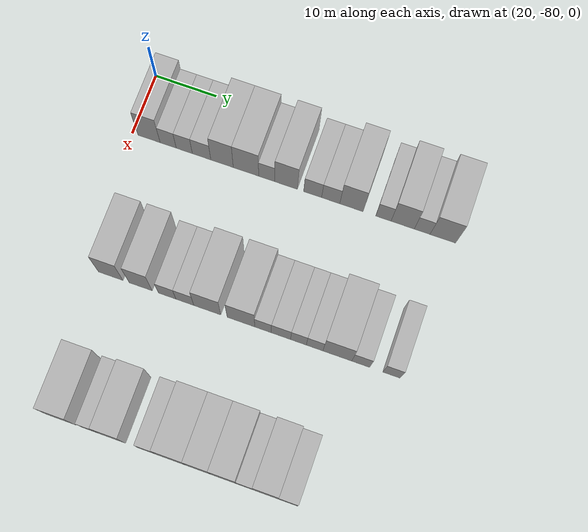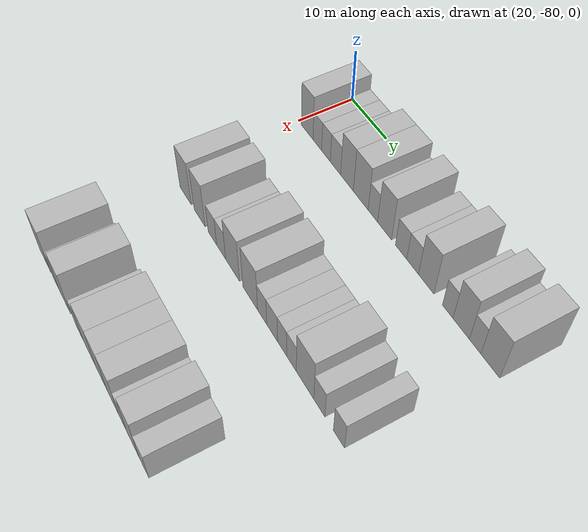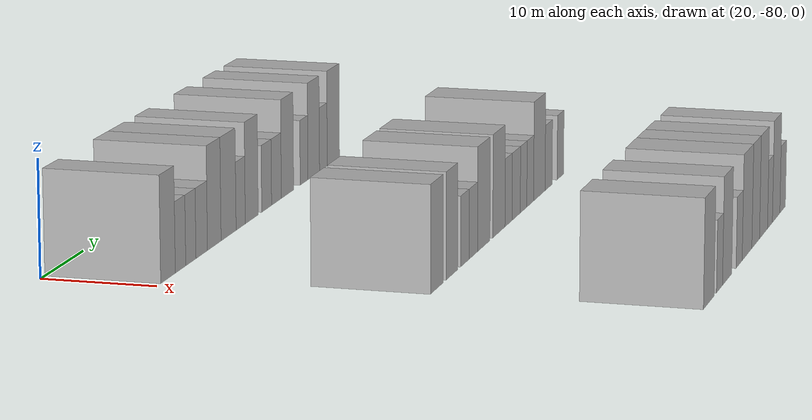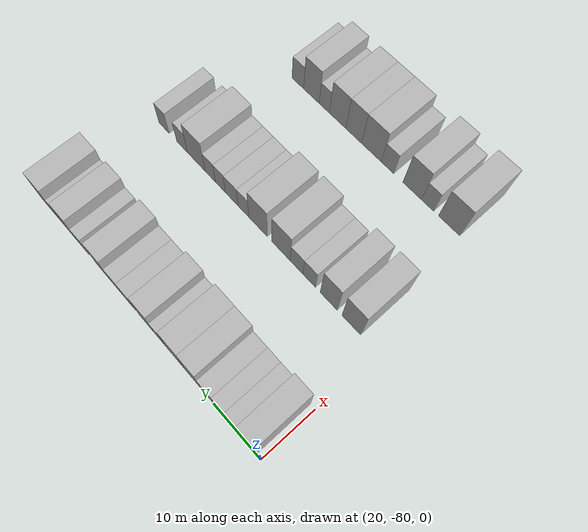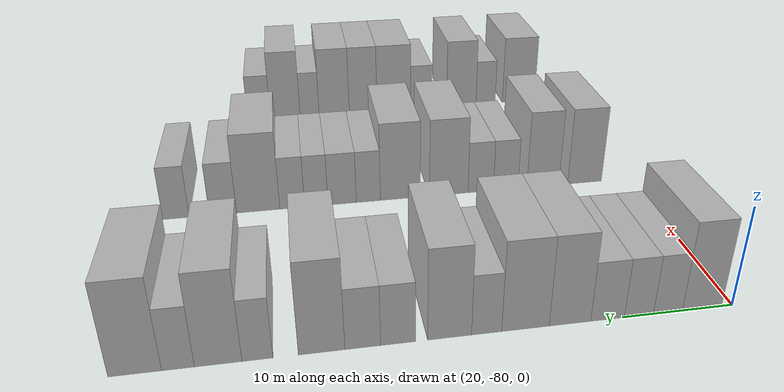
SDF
<sdf version="1.6">
 <world name="default">
  <model name="building_71">
   <static>1</static>
   <pose>25.0000 -77.2271 0 0.000000 0.000000 0.000000</pose>
   <link name="link">
    <pose>0 0 4.50 0 0 0</pose>
    <collision name="collision"><geometry><box><size>10.0000 3.6264 9.0000</size></box></geometry></collision>
    <visual name="visual">
     <cast_shadows>0</cast_shadows>
     <geometry><box><size>10.0000 3.6264 9.0000</size></box></geometry>
     <material>
      <script>
       <uri>model://HANNAS_wall/materials/scripts</uri>
       <uri>model://HANNAS_wall/materials/textures</uri>
       <name>vrc/HANNAS_wall</name>
      </script>
     </material>
    </visual>
   </link>
  </model>
  <model name="building_72">
   <static>1</static>
   <pose>25.0000 -74.0999 0 0.000000 0.000000 0.000000</pose>
   <link name="link">
    <pose>0 0 3.00 0 0 0</pose>
    <collision name="collision"><geometry><box><size>10.0000 2.6280 6.0000</size></box></geometry></collision>
    <visual name="visual">
     <cast_shadows>0</cast_shadows>
     <geometry><box><size>10.0000 2.6280 6.0000</size></box></geometry>
     <material>
      <script>
       <uri>model://HANNAS_wall/materials/scripts</uri>
       <uri>model://HANNAS_wall/materials/textures</uri>
       <name>vrc/HANNAS_wall</name>
      </script>
     </material>
    </visual>
   </link>
  </model>
  <model name="building_73">
   <static>1</static>
   <pose>25.0000 -71.4764 0 0.000000 0.000000 0.000000</pose>
   <link name="link">
    <pose>0 0 3.00 0 0 0</pose>
    <collision name="collision"><geometry><box><size>10.0000 2.6190 6.0000</size></box></geometry></collision>
    <visual name="visual">
     <cast_shadows>0</cast_shadows>
     <geometry><box><size>10.0000 2.6190 6.0000</size></box></geometry>
     <material>
      <script>
       <uri>model://HANNAS_wall/materials/scripts</uri>
       <uri>model://HANNAS_wall/materials/textures</uri>
       <name>vrc/HANNAS_wall</name>
      </script>
     </material>
    </visual>
   </link>
  </model>
  <model name="building_74">
   <static>1</static>
   <pose>25.0000 -68.6689 0 0.000000 0.000000 0.000000</pose>
   <link name="link">
    <pose>0 0 3.00 0 0 0</pose>
    <collision name="collision"><geometry><box><size>10.0000 2.9961 6.0000</size></box></geometry></collision>
    <visual name="visual">
     <cast_shadows>0</cast_shadows>
     <geometry><box><size>10.0000 2.9961 6.0000</size></box></geometry>
     <material>
      <script>
       <uri>model://HANNAS_wall/materials/scripts</uri>
       <uri>model://HANNAS_wall/materials/textures</uri>
       <name>vrc/HANNAS_wall</name>
      </script>
     </material>
    </visual>
   </link>
  </model>
  <model name="building_75">
   <static>1</static>
   <pose>25.0000 -65.3543 0 0.000000 0.000000 0.000000</pose>
   <link name="link">
    <pose>0 0 4.50 0 0 0</pose>
    <collision name="collision"><geometry><box><size>10.0000 3.6329 9.0000</size></box></geometry></collision>
    <visual name="visual">
     <cast_shadows>0</cast_shadows>
     <geometry><box><size>10.0000 3.6329 9.0000</size></box></geometry>
     <material>
      <script>
       <uri>model://HANNAS_wall/materials/scripts</uri>
       <uri>model://HANNAS_wall/materials/textures</uri>
       <name>vrc/HANNAS_wall</name>
      </script>
     </material>
    </visual>
   </link>
  </model>
  <model name="building_76">
   <static>1</static>
   <pose>25.0000 -61.4935 0 0.000000 0.000000 0.000000</pose>
   <link name="link">
    <pose>0 0 4.50 0 0 0</pose>
    <collision name="collision"><geometry><box><size>10.0000 4.0887 9.0000</size></box></geometry></collision>
    <visual name="visual">
     <cast_shadows>0</cast_shadows>
     <geometry><box><size>10.0000 4.0887 9.0000</size></box></geometry>
     <material>
      <script>
       <uri>model://HANNAS_wall/materials/scripts</uri>
       <uri>model://HANNAS_wall/materials/textures</uri>
       <name>vrc/HANNAS_wall</name>
      </script>
     </material>
    </visual>
   </link>
  </model>
  <model name="building_77">
   <static>1</static>
   <pose>25.0000 -58.1745 0 0.000000 0.000000 0.000000</pose>
   <link name="link">
    <pose>0 0 3.00 0 0 0</pose>
    <collision name="collision"><geometry><box><size>10.0000 2.5493 6.0000</size></box></geometry></collision>
    <visual name="visual">
     <cast_shadows>0</cast_shadows>
     <geometry><box><size>10.0000 2.5493 6.0000</size></box></geometry>
     <material>
      <script>
       <uri>model://HANNAS_wall/materials/scripts</uri>
       <uri>model://HANNAS_wall/materials/textures</uri>
       <name>vrc/HANNAS_wall</name>
      </script>
     </material>
    </visual>
   </link>
  </model>
  <model name="building_78">
   <static>1</static>
   <pose>25.0000 -55.0667 0 0.000000 0.000000 0.000000</pose>
   <link name="link">
    <pose>0 0 4.50 0 0 0</pose>
    <collision name="collision"><geometry><box><size>10.0000 3.6664 9.0000</size></box></geometry></collision>
    <visual name="visual">
     <cast_shadows>0</cast_shadows>
     <geometry><box><size>10.0000 3.6664 9.0000</size></box></geometry>
     <material>
      <script>
       <uri>model://HANNAS_wall/materials/scripts</uri>
       <uri>model://HANNAS_wall/materials/textures</uri>
       <name>vrc/HANNAS_wall</name>
      </script>
     </material>
    </visual>
   </link>
  </model>
  <model name="building_79">
   <static>1</static>
   <pose>25.0000 -50.8012 0 0.000000 0.000000 0.000000</pose>
   <link name="link">
    <pose>0 0 3.00 0 0 0</pose>
    <collision name="collision"><geometry><box><size>10.0000 2.8646 6.0000</size></box></geometry></collision>
    <visual name="visual">
     <cast_shadows>0</cast_shadows>
     <geometry><box><size>10.0000 2.8646 6.0000</size></box></geometry>
     <material>
      <script>
       <uri>model://HANNAS_wall/materials/scripts</uri>
       <uri>model://HANNAS_wall/materials/textures</uri>
       <name>vrc/HANNAS_wall</name>
      </script>
     </material>
    </visual>
   </link>
  </model>
  <model name="building_80">
   <static>1</static>
   <pose>25.0000 -47.9252 0 0.000000 0.000000 0.000000</pose>
   <link name="link">
    <pose>0 0 3.00 0 0 0</pose>
    <collision name="collision"><geometry><box><size>10.0000 2.8875 6.0000</size></box></geometry></collision>
    <visual name="visual">
     <cast_shadows>0</cast_shadows>
     <geometry><box><size>10.0000 2.8875 6.0000</size></box></geometry>
     <material>
      <script>
       <uri>model://HANNAS_wall/materials/scripts</uri>
       <uri>model://HANNAS_wall/materials/textures</uri>
       <name>vrc/HANNAS_wall</name>
      </script>
     </material>
    </visual>
   </link>
  </model>
  <model name="building_81">
   <static>1</static>
   <pose>25.0000 -44.6304 0 0.000000 0.000000 0.000000</pose>
   <link name="link">
    <pose>0 0 4.50 0 0 0</pose>
    <collision name="collision"><geometry><box><size>10.0000 3.7020 9.0000</size></box></geometry></collision>
    <visual name="visual">
     <cast_shadows>0</cast_shadows>
     <geometry><box><size>10.0000 3.7020 9.0000</size></box></geometry>
     <material>
      <script>
       <uri>model://HANNAS_wall/materials/scripts</uri>
       <uri>model://HANNAS_wall/materials/textures</uri>
       <name>vrc/HANNAS_wall</name>
      </script>
     </material>
    </visual>
   </link>
  </model>
  <model name="building_82">
   <static>1</static>
   <pose>25.0000 -39.5773 0 0.000000 0.000000 0.000000</pose>
   <link name="link">
    <pose>0 0 3.00 0 0 0</pose>
    <collision name="collision"><geometry><box><size>10.0000 2.4043 6.0000</size></box></geometry></collision>
    <visual name="visual">
     <cast_shadows>0</cast_shadows>
     <geometry><box><size>10.0000 2.4043 6.0000</size></box></geometry>
     <material>
      <script>
       <uri>model://HANNAS_wall/materials/scripts</uri>
       <uri>model://HANNAS_wall/materials/textures</uri>
       <name>vrc/HANNAS_wall</name>
      </script>
     </material>
    </visual>
   </link>
  </model>
  <model name="building_83">
   <static>1</static>
   <pose>25.0000 -36.5504 0 0.000000 0.000000 0.000000</pose>
   <link name="link">
    <pose>0 0 4.50 0 0 0</pose>
    <collision name="collision"><geometry><box><size>10.0000 3.6496 9.0000</size></box></geometry></collision>
    <visual name="visual">
     <cast_shadows>0</cast_shadows>
     <geometry><box><size>10.0000 3.6496 9.0000</size></box></geometry>
     <material>
      <script>
       <uri>model://HANNAS_wall/materials/scripts</uri>
       <uri>model://HANNAS_wall/materials/textures</uri>
       <name>vrc/HANNAS_wall</name>
      </script>
     </material>
    </visual>
   </link>
  </model>
  <model name="building_84">
   <static>1</static>
   <pose>25.0000 -33.4849 0 0.000000 0.000000 0.000000</pose>
   <link name="link">
    <pose>0 0 3.00 0 0 0</pose>
    <collision name="collision"><geometry><box><size>10.0000 2.4814 6.0000</size></box></geometry></collision>
    <visual name="visual">
     <cast_shadows>0</cast_shadows>
     <geometry><box><size>10.0000 2.4814 6.0000</size></box></geometry>
     <material>
      <script>
       <uri>model://HANNAS_wall/materials/scripts</uri>
       <uri>model://HANNAS_wall/materials/textures</uri>
       <name>vrc/HANNAS_wall</name>
      </script>
     </material>
    </visual>
   </link>
  </model>
  <model name="building_85">
   <static>1</static>
   <pose>25.0000 -30.2438 0 0.000000 0.000000 0.000000</pose>
   <link name="link">
    <pose>0 0 4.50 0 0 0</pose>
    <collision name="collision"><geometry><box><size>10.0000 4.0009 9.0000</size></box></geometry></collision>
    <visual name="visual">
     <cast_shadows>0</cast_shadows>
     <geometry><box><size>10.0000 4.0009 9.0000</size></box></geometry>
     <material>
      <script>
       <uri>model://HANNAS_wall/materials/scripts</uri>
       <uri>model://HANNAS_wall/materials/textures</uri>
       <name>vrc/HANNAS_wall</name>
      </script>
     </material>
    </visual>
   </link>
  </model>
  <model name="building_253">
   <static>1</static>
   <pose>47.0000 -74.7737 0 0.000000 0.000000 0.000000</pose>
   <link name="link">
    <pose>0 0 4.50 0 0 0</pose>
    <collision name="collision"><geometry><box><size>10.0000 3.8963 9.0000</size></box></geometry></collision>
    <visual name="visual">
     <cast_shadows>0</cast_shadows>
     <geometry><box><size>10.0000 3.8963 9.0000</size></box></geometry>
     <material>
      <script>
       <uri>model://HANNAS_wall/materials/scripts</uri>
       <uri>model://HANNAS_wall/materials/textures</uri>
       <name>vrc/HANNAS_wall</name>
      </script>
     </material>
    </visual>
   </link>
  </model>
  <model name="building_254">
   <static>1</static>
   <pose>47.0000 -70.0081 0 0.000000 0.000000 0.000000</pose>
   <link name="link">
    <pose>0 0 4.50 0 0 0</pose>
    <collision name="collision"><geometry><box><size>10.0000 3.6349 9.0000</size></box></geometry></collision>
    <visual name="visual">
     <cast_shadows>0</cast_shadows>
     <geometry><box><size>10.0000 3.6349 9.0000</size></box></geometry>
     <material>
      <script>
       <uri>model://HANNAS_wall/materials/scripts</uri>
       <uri>model://HANNAS_wall/materials/textures</uri>
       <name>vrc/HANNAS_wall</name>
      </script>
     </material>
    </visual>
   </link>
  </model>
  <model name="building_255">
   <static>1</static>
   <pose>47.0000 -65.8189 0 0.000000 0.000000 0.000000</pose>
   <link name="link">
    <pose>0 0 3.00 0 0 0</pose>
    <collision name="collision"><geometry><box><size>10.0000 2.7436 6.0000</size></box></geometry></collision>
    <visual name="visual">
     <cast_shadows>0</cast_shadows>
     <geometry><box><size>10.0000 2.7436 6.0000</size></box></geometry>
     <material>
      <script>
       <uri>model://HANNAS_wall/materials/scripts</uri>
       <uri>model://HANNAS_wall/materials/textures</uri>
       <name>vrc/HANNAS_wall</name>
      </script>
     </material>
    </visual>
   </link>
  </model>
  <model name="building_256">
   <static>1</static>
   <pose>47.0000 -63.0402 0 0.000000 0.000000 0.000000</pose>
   <link name="link">
    <pose>0 0 3.00 0 0 0</pose>
    <collision name="collision"><geometry><box><size>10.0000 2.8139 6.0000</size></box></geometry></collision>
    <visual name="visual">
     <cast_shadows>0</cast_shadows>
     <geometry><box><size>10.0000 2.8139 6.0000</size></box></geometry>
     <material>
      <script>
       <uri>model://HANNAS_wall/materials/scripts</uri>
       <uri>model://HANNAS_wall/materials/textures</uri>
       <name>vrc/HANNAS_wall</name>
      </script>
     </material>
    </visual>
   </link>
  </model>
  <model name="building_257">
   <static>1</static>
   <pose>47.0000 -59.5297 0 0.000000 0.000000 0.000000</pose>
   <link name="link">
    <pose>0 0 4.50 0 0 0</pose>
    <collision name="collision"><geometry><box><size>10.0000 4.2072 9.0000</size></box></geometry></collision>
    <visual name="visual">
     <cast_shadows>0</cast_shadows>
     <geometry><box><size>10.0000 4.2072 9.0000</size></box></geometry>
     <material>
      <script>
       <uri>model://HANNAS_wall/materials/scripts</uri>
       <uri>model://HANNAS_wall/materials/textures</uri>
       <name>vrc/HANNAS_wall</name>
      </script>
     </material>
    </visual>
   </link>
  </model>
  <model name="building_258">
   <static>1</static>
   <pose>47.0000 -54.2834 0 0.000000 0.000000 0.000000</pose>
   <link name="link">
    <pose>0 0 4.50 0 0 0</pose>
    <collision name="collision"><geometry><box><size>10.0000 4.2854 9.0000</size></box></geometry></collision>
    <visual name="visual">
     <cast_shadows>0</cast_shadows>
     <geometry><box><size>10.0000 4.2854 9.0000</size></box></geometry>
     <material>
      <script>
       <uri>model://HANNAS_wall/materials/scripts</uri>
       <uri>model://HANNAS_wall/materials/textures</uri>
       <name>vrc/HANNAS_wall</name>
      </script>
     </material>
    </visual>
   </link>
  </model>
  <model name="building_259">
   <static>1</static>
   <pose>47.0000 -50.8592 0 0.000000 0.000000 0.000000</pose>
   <link name="link">
    <pose>0 0 3.00 0 0 0</pose>
    <collision name="collision"><geometry><box><size>10.0000 2.5629 6.0000</size></box></geometry></collision>
    <visual name="visual">
     <cast_shadows>0</cast_shadows>
     <geometry><box><size>10.0000 2.5629 6.0000</size></box></geometry>
     <material>
      <script>
       <uri>model://HANNAS_wall/materials/scripts</uri>
       <uri>model://HANNAS_wall/materials/textures</uri>
       <name>vrc/HANNAS_wall</name>
      </script>
     </material>
    </visual>
   </link>
  </model>
  <model name="building_260">
   <static>1</static>
   <pose>47.0000 -48.0851 0 0.000000 0.000000 0.000000</pose>
   <link name="link">
    <pose>0 0 3.00 0 0 0</pose>
    <collision name="collision"><geometry><box><size>10.0000 2.9854 6.0000</size></box></geometry></collision>
    <visual name="visual">
     <cast_shadows>0</cast_shadows>
     <geometry><box><size>10.0000 2.9854 6.0000</size></box></geometry>
     <material>
      <script>
       <uri>model://HANNAS_wall/materials/scripts</uri>
       <uri>model://HANNAS_wall/materials/textures</uri>
       <name>vrc/HANNAS_wall</name>
      </script>
     </material>
    </visual>
   </link>
  </model>
  <model name="building_261">
   <static>1</static>
   <pose>47.0000 -45.3789 0 0.000000 0.000000 0.000000</pose>
   <link name="link">
    <pose>0 0 3.00 0 0 0</pose>
    <collision name="collision"><geometry><box><size>10.0000 2.4269 6.0000</size></box></geometry></collision>
    <visual name="visual">
     <cast_shadows>0</cast_shadows>
     <geometry><box><size>10.0000 2.4269 6.0000</size></box></geometry>
     <material>
      <script>
       <uri>model://HANNAS_wall/materials/scripts</uri>
       <uri>model://HANNAS_wall/materials/textures</uri>
       <name>vrc/HANNAS_wall</name>
      </script>
     </material>
    </visual>
   </link>
  </model>
  <model name="building_262">
   <static>1</static>
   <pose>47.0000 -42.8904 0 0.000000 0.000000 0.000000</pose>
   <link name="link">
    <pose>0 0 3.00 0 0 0</pose>
    <collision name="collision"><geometry><box><size>10.0000 2.5502 6.0000</size></box></geometry></collision>
    <visual name="visual">
     <cast_shadows>0</cast_shadows>
     <geometry><box><size>10.0000 2.5502 6.0000</size></box></geometry>
     <material>
      <script>
       <uri>model://HANNAS_wall/materials/scripts</uri>
       <uri>model://HANNAS_wall/materials/textures</uri>
       <name>vrc/HANNAS_wall</name>
      </script>
     </material>
    </visual>
   </link>
  </model>
  <model name="building_263">
   <static>1</static>
   <pose>47.0000 -39.4060 0 0.000000 0.000000 0.000000</pose>
   <link name="link">
    <pose>0 0 4.50 0 0 0</pose>
    <collision name="collision"><geometry><box><size>10.0000 4.4186 9.0000</size></box></geometry></collision>
    <visual name="visual">
     <cast_shadows>0</cast_shadows>
     <geometry><box><size>10.0000 4.4186 9.0000</size></box></geometry>
     <material>
      <script>
       <uri>model://HANNAS_wall/materials/scripts</uri>
       <uri>model://HANNAS_wall/materials/textures</uri>
       <name>vrc/HANNAS_wall</name>
      </script>
     </material>
    </visual>
   </link>
  </model>
  <model name="building_264">
   <static>1</static>
   <pose>47.0000 -35.8265 0 0.000000 0.000000 0.000000</pose>
   <link name="link">
    <pose>0 0 3.00 0 0 0</pose>
    <collision name="collision"><geometry><box><size>10.0000 2.7404 6.0000</size></box></geometry></collision>
    <visual name="visual">
     <cast_shadows>0</cast_shadows>
     <geometry><box><size>10.0000 2.7404 6.0000</size></box></geometry>
     <material>
      <script>
       <uri>model://HANNAS_wall/materials/scripts</uri>
       <uri>model://HANNAS_wall/materials/textures</uri>
       <name>vrc/HANNAS_wall</name>
      </script>
     </material>
    </visual>
   </link>
  </model>
  <model name="building_265">
   <static>1</static>
   <pose>47.0000 -31.1446 0 0.000000 0.000000 0.000000</pose>
   <link name="link">
    <pose>0 0 3.00 0 0 0</pose>
    <collision name="collision"><geometry><box><size>10.0000 2.6234 6.0000</size></box></geometry></collision>
    <visual name="visual">
     <cast_shadows>0</cast_shadows>
     <geometry><box><size>10.0000 2.6234 6.0000</size></box></geometry>
     <material>
      <script>
       <uri>model://HANNAS_wall/materials/scripts</uri>
       <uri>model://HANNAS_wall/materials/textures</uri>
       <name>vrc/HANNAS_wall</name>
      </script>
     </material>
    </visual>
   </link>
  </model>
  <model name="building_445">
   <static>1</static>
   <pose>69.0000 -73.6067 0 0.000000 0.000000 0.000000</pose>
   <link name="link">
    <pose>0 0 4.50 0 0 0</pose>
    <collision name="collision"><geometry><box><size>10.0000 4.4543 9.0000</size></box></geometry></collision>
    <visual name="visual">
     <cast_shadows>0</cast_shadows>
     <geometry><box><size>10.0000 4.4543 9.0000</size></box></geometry>
     <material>
      <script>
       <uri>model://HANNAS_wall/materials/scripts</uri>
       <uri>model://HANNAS_wall/materials/textures</uri>
       <name>vrc/HANNAS_wall</name>
      </script>
     </material>
    </visual>
   </link>
  </model>
  <model name="building_446">
   <static>1</static>
   <pose>69.0000 -69.0687 0 0.000000 0.000000 0.000000</pose>
   <link name="link">
    <pose>0 0 3.00 0 0 0</pose>
    <collision name="collision"><geometry><box><size>10.0000 2.6218 6.0000</size></box></geometry></collision>
    <visual name="visual">
     <cast_shadows>0</cast_shadows>
     <geometry><box><size>10.0000 2.6218 6.0000</size></box></geometry>
     <material>
      <script>
       <uri>model://HANNAS_wall/materials/scripts</uri>
       <uri>model://HANNAS_wall/materials/textures</uri>
       <name>vrc/HANNAS_wall</name>
      </script>
     </material>
    </visual>
   </link>
  </model>
  <model name="building_447">
   <static>1</static>
   <pose>69.0000 -65.7496 0 0.000000 0.000000 0.000000</pose>
   <link name="link">
    <pose>0 0 4.50 0 0 0</pose>
    <collision name="collision"><geometry><box><size>10.0000 4.0164 9.0000</size></box></geometry></collision>
    <visual name="visual">
     <cast_shadows>0</cast_shadows>
     <geometry><box><size>10.0000 4.0164 9.0000</size></box></geometry>
     <material>
      <script>
       <uri>model://HANNAS_wall/materials/scripts</uri>
       <uri>model://HANNAS_wall/materials/textures</uri>
       <name>vrc/HANNAS_wall</name>
      </script>
     </material>
    </visual>
   </link>
  </model>
  <model name="building_448">
   <static>1</static>
   <pose>69.0000 -60.3578 0 0.000000 0.000000 0.000000</pose>
   <link name="link">
    <pose>0 0 3.00 0 0 0</pose>
    <collision name="collision"><geometry><box><size>10.0000 2.7674 6.0000</size></box></geometry></collision>
    <visual name="visual">
     <cast_shadows>0</cast_shadows>
     <geometry><box><size>10.0000 2.7674 6.0000</size></box></geometry>
     <material>
      <script>
       <uri>model://HANNAS_wall/materials/scripts</uri>
       <uri>model://HANNAS_wall/materials/textures</uri>
       <name>vrc/HANNAS_wall</name>
      </script>
     </material>
    </visual>
   </link>
  </model>
  <model name="building_449">
   <static>1</static>
   <pose>69.0000 -56.7254 0 0.000000 0.000000 0.000000</pose>
   <link name="link">
    <pose>0 0 4.50 0 0 0</pose>
    <collision name="collision"><geometry><box><size>10.0000 4.4974 9.0000</size></box></geometry></collision>
    <visual name="visual">
     <cast_shadows>0</cast_shadows>
     <geometry><box><size>10.0000 4.4974 9.0000</size></box></geometry>
     <material>
      <script>
       <uri>model://HANNAS_wall/materials/scripts</uri>
       <uri>model://HANNAS_wall/materials/textures</uri>
       <name>vrc/HANNAS_wall</name>
      </script>
     </material>
    </visual>
   </link>
  </model>
  <model name="building_450">
   <static>1</static>
   <pose>69.0000 -52.6554 0 0.000000 0.000000 0.000000</pose>
   <link name="link">
    <pose>0 0 4.50 0 0 0</pose>
    <collision name="collision"><geometry><box><size>10.0000 3.6425 9.0000</size></box></geometry></collision>
    <visual name="visual">
     <cast_shadows>0</cast_shadows>
     <geometry><box><size>10.0000 3.6425 9.0000</size></box></geometry>
     <material>
      <script>
       <uri>model://HANNAS_wall/materials/scripts</uri>
       <uri>model://HANNAS_wall/materials/textures</uri>
       <name>vrc/HANNAS_wall</name>
      </script>
     </material>
    </visual>
   </link>
  </model>
  <model name="building_451">
   <static>1</static>
   <pose>69.0000 -48.8770 0 0.000000 0.000000 0.000000</pose>
   <link name="link">
    <pose>0 0 4.50 0 0 0</pose>
    <collision name="collision"><geometry><box><size>10.0000 3.9144 9.0000</size></box></geometry></collision>
    <visual name="visual">
     <cast_shadows>0</cast_shadows>
     <geometry><box><size>10.0000 3.9144 9.0000</size></box></geometry>
     <material>
      <script>
       <uri>model://HANNAS_wall/materials/scripts</uri>
       <uri>model://HANNAS_wall/materials/textures</uri>
       <name>vrc/HANNAS_wall</name>
      </script>
     </material>
    </visual>
   </link>
  </model>
  <model name="building_452">
   <static>1</static>
   <pose>69.0000 -45.7047 0 0.000000 0.000000 0.000000</pose>
   <link name="link">
    <pose>0 0 3.00 0 0 0</pose>
    <collision name="collision"><geometry><box><size>10.0000 2.4301 6.0000</size></box></geometry></collision>
    <visual name="visual">
     <cast_shadows>0</cast_shadows>
     <geometry><box><size>10.0000 2.4301 6.0000</size></box></geometry>
     <material>
      <script>
       <uri>model://HANNAS_wall/materials/scripts</uri>
       <uri>model://HANNAS_wall/materials/textures</uri>
       <name>vrc/HANNAS_wall</name>
      </script>
     </material>
    </visual>
   </link>
  </model>
  <model name="building_453">
   <static>1</static>
   <pose>69.0000 -42.5962 0 0.000000 0.000000 0.000000</pose>
   <link name="link">
    <pose>0 0 4.50 0 0 0</pose>
    <collision name="collision"><geometry><box><size>10.0000 3.7869 9.0000</size></box></geometry></collision>
    <visual name="visual">
     <cast_shadows>0</cast_shadows>
     <geometry><box><size>10.0000 3.7869 9.0000</size></box></geometry>
     <material>
      <script>
       <uri>model://HANNAS_wall/materials/scripts</uri>
       <uri>model://HANNAS_wall/materials/textures</uri>
       <name>vrc/HANNAS_wall</name>
      </script>
     </material>
    </visual>
   </link>
  </model>
  <model name="building_454">
   <static>1</static>
   <pose>69.0000 -39.2753 0 0.000000 0.000000 0.000000</pose>
   <link name="link">
    <pose>0 0 3.00 0 0 0</pose>
    <collision name="collision"><geometry><box><size>10.0000 2.8550 6.0000</size></box></geometry></collision>
    <visual name="visual">
     <cast_shadows>0</cast_shadows>
     <geometry><box><size>10.0000 2.8550 6.0000</size></box></geometry>
     <material>
      <script>
       <uri>model://HANNAS_wall/materials/scripts</uri>
       <uri>model://HANNAS_wall/materials/textures</uri>
       <name>vrc/HANNAS_wall</name>
      </script>
     </material>
    </visual>
   </link>
  </model>
 </world>
</sdf>
